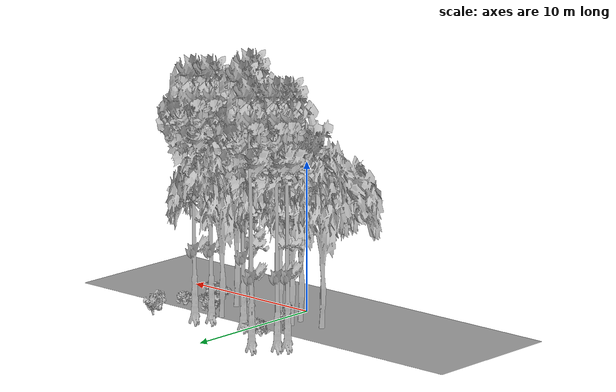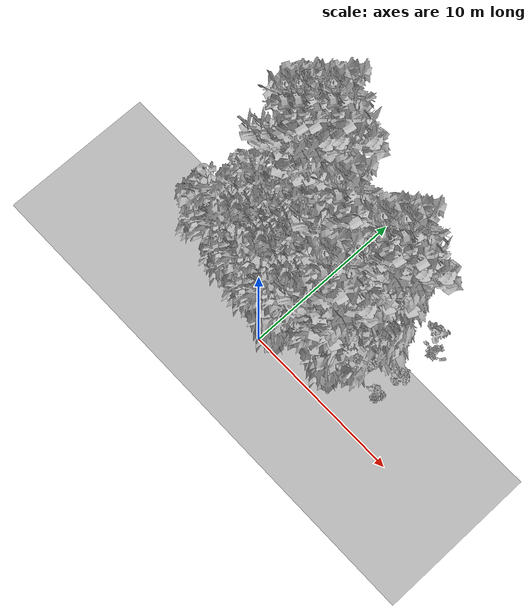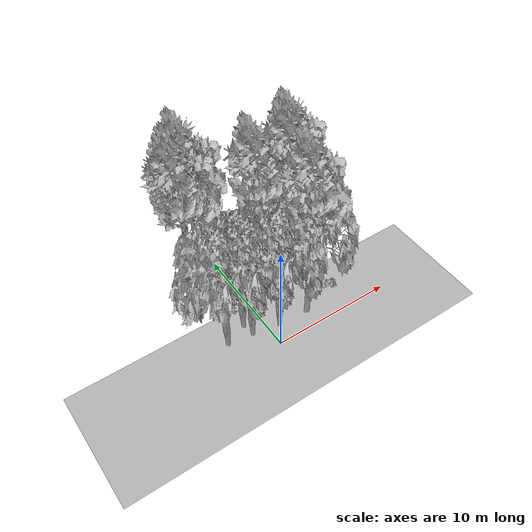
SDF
<sdf version="1.7">
 <world name="default">
  <model name="ground_plane">
   <static>1</static>
   <link name="link">
    <collision name="collision">
     <geometry><plane><normal>0 0 1</normal><size>100 100</size></plane></geometry>
     <surface><contact><ode><min_depth>0.01</min_depth><max_vel>0</max_vel></ode></contact></surface>
    </collision>
    <visual name="grass">
     <cast_shadows>0</cast_shadows>
     <geometry>
      <mesh>
       <scale>0.5814285714285714 0.18142857142857144 0.1</scale>
       <uri>file://grass_plane/meshes/grass_plane.dae</uri>
      </mesh>
     </geometry>
    </visual>
   </link>
  </model>
  <model name="Tree 58">
   <static>1</static>
   <pose>-3.8676000004830726 6.058374320018416 0 1.57079 -0 0</pose>
   <link name="link">
    <collision name="collision">
     <geometry><mesh><scale>3.5 5 3.5</scale><uri>model://tree_9/meshes/tree_9.obj</uri></mesh></geometry>
    </collision>
    <visual name="visual">
     <geometry><mesh><scale>3.5 5 3.5</scale><uri>model://tree_9/meshes/tree_9.obj</uri></mesh></geometry>
    </visual>
   </link>
  </model>
  <model name="Tree 81">
   <static>1</static>
   <pose>3.0499191343587455 4.711356068969959 0 1.57079 -0 0</pose>
   <link name="link">
    <collision name="collision">
     <geometry><mesh><scale>3.5 5 3.5</scale><uri>model://tree_2/meshes/tree_2.obj</uri></mesh></geometry>
    </collision>
    <visual name="visual">
     <geometry><mesh><scale>3.5 5 3.5</scale><uri>model://tree_2/meshes/tree_2.obj</uri></mesh></geometry>
    </visual>
   </link>
  </model>
  <model name="Tree 84">
   <static>1</static>
   <pose>-2.361479018492652 7.778699306249887 0 1.57079 -0 0</pose>
   <link name="link">
    <collision name="collision">
     <geometry><mesh><scale>3.5 5 3.5</scale><uri>model://tree_9/meshes/tree_9.obj</uri></mesh></geometry>
    </collision>
    <visual name="visual">
     <geometry><mesh><scale>3.5 5 3.5</scale><uri>model://tree_9/meshes/tree_9.obj</uri></mesh></geometry>
    </visual>
   </link>
  </model>
  <model name="Tree 96">
   <static>1</static>
   <pose>-3.4448718197303236 2.2345222787484182 0 1.57079 -0 0</pose>
   <link name="link">
    <collision name="collision">
     <geometry><mesh><scale>3.5 5 3.5</scale><uri>model://tree_2/meshes/tree_2.obj</uri></mesh></geometry>
    </collision>
    <visual name="visual">
     <geometry><mesh><scale>3.5 5 3.5</scale><uri>model://tree_2/meshes/tree_2.obj</uri></mesh></geometry>
    </visual>
   </link>
  </model>
  <model name="Tree 104">
   <static>1</static>
   <pose>0.862523543652685 1.5471342027975723 0 1.57079 -0 0</pose>
   <link name="link">
    <collision name="collision">
     <geometry><mesh><scale>3.5 5 3.5</scale><uri>model://tree_2/meshes/tree_2.obj</uri></mesh></geometry>
    </collision>
    <visual name="visual">
     <geometry><mesh><scale>3.5 5 3.5</scale><uri>model://tree_2/meshes/tree_2.obj</uri></mesh></geometry>
    </visual>
   </link>
  </model>
  <model name="Tree 156">
   <static>1</static>
   <pose>-1.3650859070767893 1.9785544096592034 0 1.57079 -0 0</pose>
   <link name="link">
    <collision name="collision">
     <geometry><mesh><scale>3.5 5 3.5</scale><uri>model://tree_2/meshes/tree_2.obj</uri></mesh></geometry>
    </collision>
    <visual name="visual">
     <geometry><mesh><scale>3.5 5 3.5</scale><uri>model://tree_2/meshes/tree_2.obj</uri></mesh></geometry>
    </visual>
   </link>
  </model>
  <model name="Tree 215">
   <static>1</static>
   <pose>3.572617508600402 1.5318819248189897 0 1.57079 -0 0</pose>
   <link name="link">
    <collision name="collision">
     <geometry><mesh><scale>3.5 5 3.5</scale><uri>model://tree_9/meshes/tree_9.obj</uri></mesh></geometry>
    </collision>
    <visual name="visual">
     <geometry><mesh><scale>3.5 5 3.5</scale><uri>model://tree_9/meshes/tree_9.obj</uri></mesh></geometry>
    </visual>
   </link>
  </model>
  <model name="Tree 249">
   <static>1</static>
   <pose>1.345097675711088 4.603257097916359 0 1.57079 -0 0</pose>
   <link name="link">
    <collision name="collision">
     <geometry><mesh><scale>3.5 5 3.5</scale><uri>model://tree_9/meshes/tree_9.obj</uri></mesh></geometry>
    </collision>
    <visual name="visual">
     <geometry><mesh><scale>3.5 5 3.5</scale><uri>model://tree_9/meshes/tree_9.obj</uri></mesh></geometry>
    </visual>
   </link>
  </model>
  <model name="Tree 289">
   <static>1</static>
   <pose>4.062404412368458 4.741917130765884 0 1.57079 -0 0</pose>
   <link name="link">
    <collision name="collision">
     <geometry><mesh><scale>3.5 5 3.5</scale><uri>model://tree_9/meshes/tree_9.obj</uri></mesh></geometry>
    </collision>
    <visual name="visual">
     <geometry><mesh><scale>3.5 5 3.5</scale><uri>model://tree_9/meshes/tree_9.obj</uri></mesh></geometry>
    </visual>
   </link>
  </model>
  <model name="Tree 399">
   <static>1</static>
   <pose>4.908807801435465 5.425411547058346 0 1.57079 -0 0</pose>
   <link name="link">
    <collision name="collision">
     <geometry><mesh><scale>3.5 5 3.5</scale><uri>model://tree_9/meshes/tree_9.obj</uri></mesh></geometry>
    </collision>
    <visual name="visual">
     <geometry><mesh><scale>3.5 5 3.5</scale><uri>model://tree_9/meshes/tree_9.obj</uri></mesh></geometry>
    </visual>
   </link>
  </model>
  <model name="Tree 413">
   <static>1</static>
   <pose>4.139860134663806 2.168178879034894 0 1.57079 -0 0</pose>
   <link name="link">
    <collision name="collision">
     <geometry><mesh><scale>3.5 5 3.5</scale><uri>model://tree_2/meshes/tree_2.obj</uri></mesh></geometry>
    </collision>
    <visual name="visual">
     <geometry><mesh><scale>3.5 5 3.5</scale><uri>model://tree_2/meshes/tree_2.obj</uri></mesh></geometry>
    </visual>
   </link>
  </model>
  <model name="Tree 417">
   <static>1</static>
   <pose>-1.541954467904901 3.037845062057791 0 1.57079 -0 0</pose>
   <link name="link">
    <collision name="collision">
     <geometry><mesh><scale>3.5 5 3.5</scale><uri>model://tree_2/meshes/tree_2.obj</uri></mesh></geometry>
    </collision>
    <visual name="visual">
     <geometry><mesh><scale>3.5 5 3.5</scale><uri>model://tree_2/meshes/tree_2.obj</uri></mesh></geometry>
    </visual>
   </link>
  </model>
  <model name="Tree 432">
   <static>1</static>
   <pose>-3.474368889373551 6.589129773357691 0 1.57079 -0 0</pose>
   <link name="link">
    <collision name="collision">
     <geometry><mesh><scale>3.5 5 3.5</scale><uri>model://tree_9/meshes/tree_9.obj</uri></mesh></geometry>
    </collision>
    <visual name="visual">
     <geometry><mesh><scale>3.5 5 3.5</scale><uri>model://tree_9/meshes/tree_9.obj</uri></mesh></geometry>
    </visual>
   </link>
  </model>
  <model name="Bush 6">
   <static>1</static>
   <pose>-1.1181700752132784 5.513051850936542 0 1.57079 -0 0</pose>
   <link name="link">
    <collision name="collision">
     <geometry><mesh><scale>2 2 2</scale><uri>model://bush_2/meshes/bush_2.obj</uri></mesh></geometry>
     <surface><contact><collide_without_contact>false</collide_without_contact></contact></surface>
    </collision>
    <visual name="visual">
     <geometry><mesh><scale>2 2 2</scale><uri>model://bush_2/meshes/bush_2.obj</uri></mesh></geometry>
    </visual>
   </link>
  </model>
  <model name="Bush 43">
   <static>1</static>
   <pose>7.0109380395826335 4.2731107064443705 0 1.57079 -0 0</pose>
   <link name="link">
    <collision name="collision">
     <geometry><mesh><scale>2 2 2</scale><uri>model://bush_3/meshes/bush_3.obj</uri></mesh></geometry>
     <surface><contact><collide_without_contact>false</collide_without_contact></contact></surface>
    </collision>
    <visual name="visual">
     <geometry><mesh><scale>2 2 2</scale><uri>model://bush_3/meshes/bush_3.obj</uri></mesh></geometry>
    </visual>
   </link>
  </model>
  <model name="Bush 132">
   <static>1</static>
   <pose>6.771512010350371 7.40821335944209 0 1.57079 -0 0</pose>
   <link name="link">
    <collision name="collision">
     <geometry><mesh><scale>2 2 2</scale><uri>model://bush_0/meshes/bush_0.obj</uri></mesh></geometry>
     <surface><contact><collide_without_contact>false</collide_without_contact></contact></surface>
    </collision>
    <visual name="visual">
     <geometry><mesh><scale>2 2 2</scale><uri>model://bush_0/meshes/bush_0.obj</uri></mesh></geometry>
    </visual>
   </link>
  </model>
  <model name="Bush 134">
   <static>1</static>
   <pose>4.640409048566411 4.377047160685059 0 1.57079 -0 0</pose>
   <link name="link">
    <collision name="collision">
     <geometry><mesh><scale>2 2 2</scale><uri>model://bush_3/meshes/bush_3.obj</uri></mesh></geometry>
     <surface><contact><collide_without_contact>false</collide_without_contact></contact></surface>
    </collision>
    <visual name="visual">
     <geometry><mesh><scale>2 2 2</scale><uri>model://bush_3/meshes/bush_3.obj</uri></mesh></geometry>
    </visual>
   </link>
  </model>
  <model name="Bush 140">
   <static>1</static>
   <pose>-1.8696280663514244 4.352553085359112 0 1.57079 -0 0</pose>
   <link name="link">
    <collision name="collision">
     <geometry><mesh><scale>2 2 2</scale><uri>model://bush_5/meshes/bush_5.obj</uri></mesh></geometry>
     <surface><contact><collide_without_contact>false</collide_without_contact></contact></surface>
    </collision>
    <visual name="visual">
     <geometry><mesh><scale>2 2 2</scale><uri>model://bush_5/meshes/bush_5.obj</uri></mesh></geometry>
    </visual>
   </link>
  </model>
  <model name="Bush 170">
   <static>1</static>
   <pose>6.738631756436483 2.5845052372533353 0 1.57079 -0 0</pose>
   <link name="link">
    <collision name="collision">
     <geometry><mesh><scale>2 2 2</scale><uri>model://bush_2/meshes/bush_2.obj</uri></mesh></geometry>
     <surface><contact><collide_without_contact>false</collide_without_contact></contact></surface>
    </collision>
    <visual name="visual">
     <geometry><mesh><scale>2 2 2</scale><uri>model://bush_2/meshes/bush_2.obj</uri></mesh></geometry>
    </visual>
   </link>
  </model>
  <model name="Bush 186">
   <static>1</static>
   <pose>-0.923517193447104 5.729030688627827 0 1.57079 -0 0</pose>
   <link name="link">
    <collision name="collision">
     <geometry><mesh><scale>2 2 2</scale><uri>model://bush_3/meshes/bush_3.obj</uri></mesh></geometry>
     <surface><contact><collide_without_contact>false</collide_without_contact></contact></surface>
    </collision>
    <visual name="visual">
     <geometry><mesh><scale>2 2 2</scale><uri>model://bush_3/meshes/bush_3.obj</uri></mesh></geometry>
    </visual>
   </link>
  </model>
  <model name="Bush 214">
   <static>1</static>
   <pose>5.053213978774849 2.9689226063676912 0 1.57079 -0 0</pose>
   <link name="link">
    <collision name="collision">
     <geometry><mesh><scale>2 2 2</scale><uri>model://bush_1/meshes/bush_1.obj</uri></mesh></geometry>
     <surface><contact><collide_without_contact>false</collide_without_contact></contact></surface>
    </collision>
    <visual name="visual">
     <geometry><mesh><scale>2 2 2</scale><uri>model://bush_1/meshes/bush_1.obj</uri></mesh></geometry>
    </visual>
   </link>
  </model>
  <model name="Bush 295">
   <static>1</static>
   <pose>7.312068169422659 6.336946189567701 0 1.57079 -0 0</pose>
   <link name="link">
    <collision name="collision">
     <geometry><mesh><scale>2 2 2</scale><uri>model://bush_4/meshes/bush_4.obj</uri></mesh></geometry>
     <surface><contact><collide_without_contact>false</collide_without_contact></contact></surface>
    </collision>
    <visual name="visual">
     <geometry><mesh><scale>2 2 2</scale><uri>model://bush_4/meshes/bush_4.obj</uri></mesh></geometry>
    </visual>
   </link>
  </model>
 </world>
</sdf>
